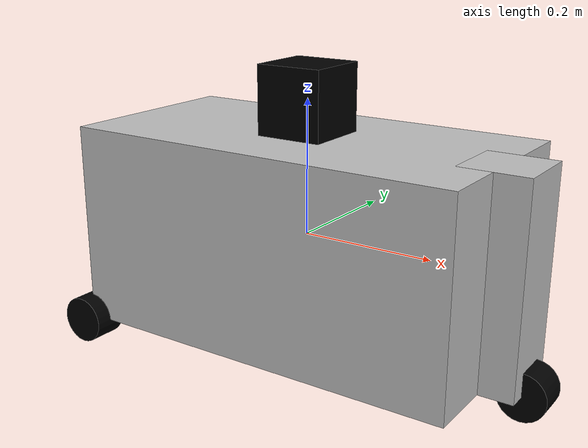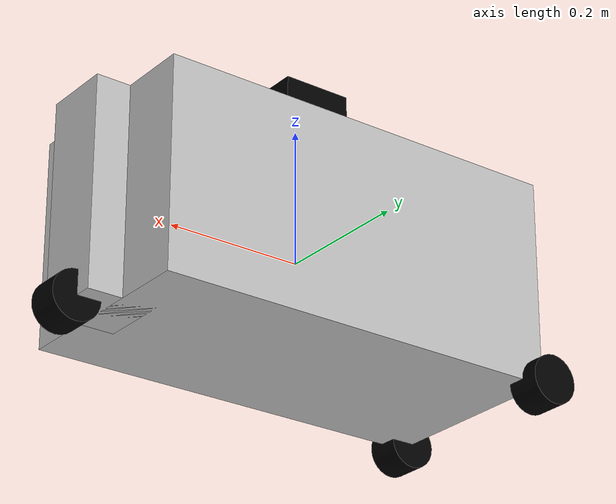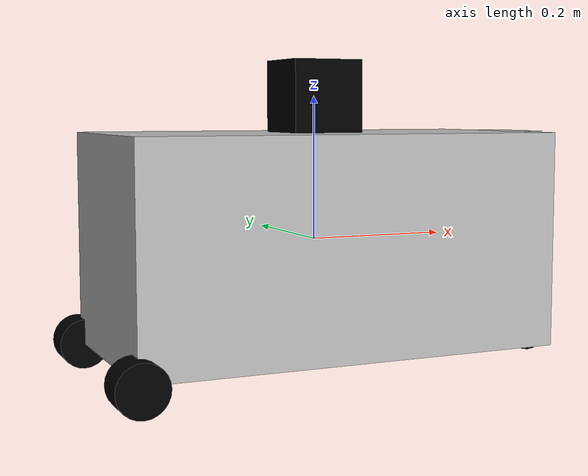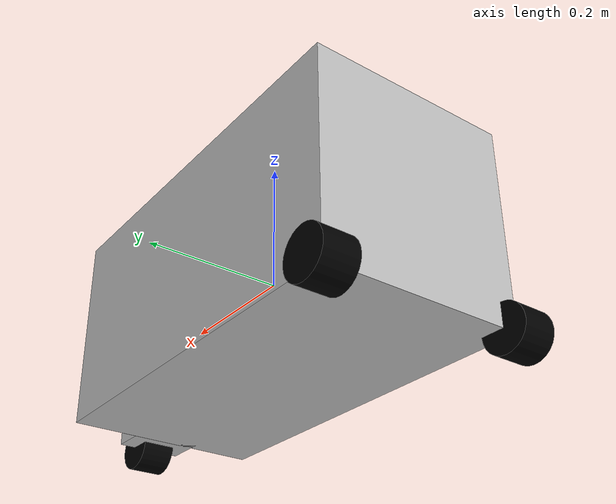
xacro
<?xml version="1.0"?>

<robot name="tortoisebot" xmlns:xacro="http://ros.org/wiki/xacro">
    <xacro:property name="body_length" value="0.6" />
    <xacro:property name="body_width" value="0.3" />
    <xacro:property name="body_height" value="0.3" />

    <xacro:property name="castor_length" value="0.1" />
    <xacro:property name="castor_width" value="0.1" />
    <xacro:property name="castor_height" value="0.3" />

    <xacro:property name="wheel_radius" value="0.035" />
    <xacro:property name="wheel_width" value="0.05" />

    <xacro:include filename="$(find tortoisebot_description)/urdf/tortoisebot_base.urdf.xacro"/>
    <xacro:include filename="$(find tortoisebot_description)/urdf/tortoisebot_wheel.urdf.xacro"/>
    <xacro:include filename="$(find tortoisebot_description)/urdf/tortoisebot_castor.urdf.xacro"/>
    <xacro:include filename="$(find tortoisebot_description)/urdf/tortoisebot_plugins.urdf.xacro"/>

    <xacro:base body_length="${body_length}" body_width="${body_width}" body_height="${body_height}"/>
    <xacro:castor width="${castor_width}" height="${castor_height}" length="${castor_length}" side="front" parent_link="base_link" xyz="${body_length/2} 0 0" rpy="0 0 0"/>
    <xacro:wheel radius="${wheel_radius}" width="${wheel_width}" side="front" parent_link="front_caster" xyz="${castor_length/2} 0 -${castor_height/2}" rpy="1.5708 0 0"/>
    <xacro:wheel radius="${wheel_radius}" width="${wheel_width}" side="left" parent_link="base_link" xyz="-${body_length/2} ${body_width/2} -${body_height/2}" rpy="-1.57080 0 0"/>
    <xacro:wheel radius="${wheel_radius}" width="${wheel_width}" side="right" parent_link="base_link" xyz="-${body_length/2} -${body_width/2} -${body_height/2}" rpy="-1.5708 0 0"/>

    <xacro:diff_drive wheel_radius="${wheel_radius}" body_width="${body_width}"/>
    <xacro:joint_state_publisher/>
</robot>

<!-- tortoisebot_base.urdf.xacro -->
<robot xmlns:xacro="http://ros.org/wiki/xacro">
    <xacro:macro name="base" params="body_length body_width body_height">

        <link name="base_link">
            <visual>
            <geometry>
                <box size="${body_length} ${body_width} ${body_height}"/>
            </geometry>
            <material name="silver">
                <color rgba="0.75 0.75 0.75 1"/>
            </material>
            </visual>
            <collision>
            <geometry>
                <box size="${body_length} ${body_width} ${body_height}"/>
            </geometry>
            </collision>
            <inertial>
            <mass value="1.0"/>
            <inertia ixx="0.015" iyy="0.0375" izz="0.0375" ixy="0" ixz="0" iyz="0"/>
            </inertial>
        </link>

        <link name="lidar_link">
            <visual>
            <origin xyz="0 0 0" rpy="0 0 0"/>
            <geometry>
                <box size="0.1 0.1 0.1"/>
            </geometry>
            <material name="black">
                <color rgba="0 0 0 1"/>
            </material>
            </visual>
            <collision>
            <origin xyz="0 0 0" rpy="0 0 0"/>
            <geometry>
                <box size="0.1 0.1 0.1"/>
            </geometry>
            </collision>
            <inertial>
            <mass value="1e-5" />
            <origin xyz="0 0 0" rpy="0 0 0"/>
            <inertia ixx="1e-6" ixy="0" ixz="0" iyy="1e-6" iyz="0" izz="1e-6" />
            </inertial>
        </link>

        <joint name="lidar_joint" type="fixed">
            <axis xyz="0 1 0" />
            <origin xyz="0 0 ${(body_height/2) + 0.05}" rpy="0 0 0"/>
            <parent link="base_link"/>
            <child link="lidar_link"/>
        </joint>

        <gazebo reference="lidar_link">
            <sensor name="lidar_link" type="gpu_lidar">
            <gz_frame_id>lidar_link</gz_frame_id>
            <pose>0 0 0 0 0 0</pose>
            <update_rate>10</update_rate>
            <topic>scan</topic>
            <ray>
                <scan>
                <horizontal>
                    <samples>720</samples>
                    <resolution>1</resolution>
                    <min_angle>-3.1415925</min_angle>
                    <max_angle>3.1415925</max_angle>
                </horizontal>
                <vertical>
                    <samples>1</samples>
                    <resolution>0.01</resolution>
                    <min_angle>0</min_angle>
                    <max_angle>0</max_angle>
                </vertical>
                </scan>
                <range>
                <min>0.10</min>
                <max>30.0</max>
                <resolution>0.01</resolution>
                </range>
                <noise>
                <type>gaussian</type>
                <mean>0.0</mean>
                <stddev>0.01</stddev>
                </noise>
            </ray>
            <always_on>1</always_on>
            <visualize>true</visualize>
            </sensor>
        </gazebo>
    </xacro:macro>
</robot>

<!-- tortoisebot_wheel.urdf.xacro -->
<robot xmlns:xacro="http://ros.org/wiki/xacro">
    <xacro:macro name="wheel" params="radius width side parent_link xyz rpy">

        <link name="${side}_wheel_link">
            <visual>
            <geometry>
                <cylinder length="${width}" radius="${radius}"/>
            </geometry>
            <material name="black"/>
            </visual>
            <collision>
            <geometry>
                <cylinder length="${width}" radius="${radius}"/>
            </geometry>
            </collision>
            <inertial>
            <mass value="0.1"/>
            <inertia ixx="5.1458e-5" iyy="5.1458e-5" izz="6.125e-5" ixy="0" ixz="0" iyz="0"/>
            </inertial>
        </link>

        <joint name="${side}_wheel_joint" type="continuous">
            <axis xyz="0 0 1"/>
            <parent link="${parent_link}"/>
            <child link="${side}_wheel_link"/>
            <origin rpy="${rpy}" xyz="${xyz}"/>
        </joint>
    </xacro:macro>
</robot>

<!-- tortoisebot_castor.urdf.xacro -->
<robot xmlns:xacro="http://ros.org/wiki/xacro">
    <xacro:macro name="castor" params="width height length side parent_link xyz rpy">

        <link name="${side}_caster">
            <visual>
            <geometry>
                <box size="${length} ${width} ${height}"/>
            </geometry>
            <material name="silver"/>
            </visual>
            <collision>
            <geometry>
                <box size="${length} ${width} ${height}"/>
            </geometry>
            </collision>
            <inertial>
            <mass value="0.1"/>
            <inertia ixx="0.00083" iyy="0.00083" izz="0.000167" ixy="0" ixz="0" iyz="0"/>
            </inertial>
        </link>

        <joint name="front_caster_joint" type="continuous">
            <axis xyz="0 0 1"/>
            <parent link="${parent_link}"/>
            <child link="${side}_caster"/>
            <origin rpy="${rpy}" xyz="${xyz}"/>
        </joint>
    </xacro:macro>
</robot>
